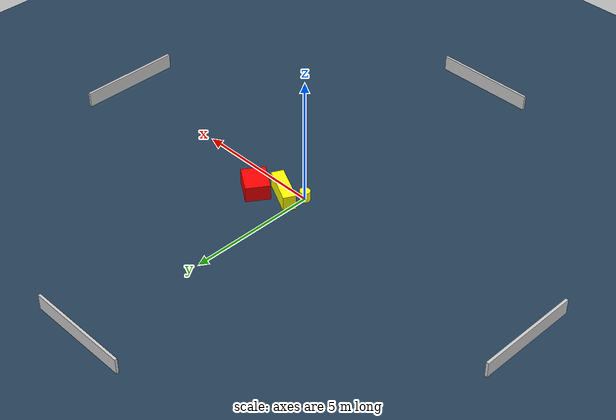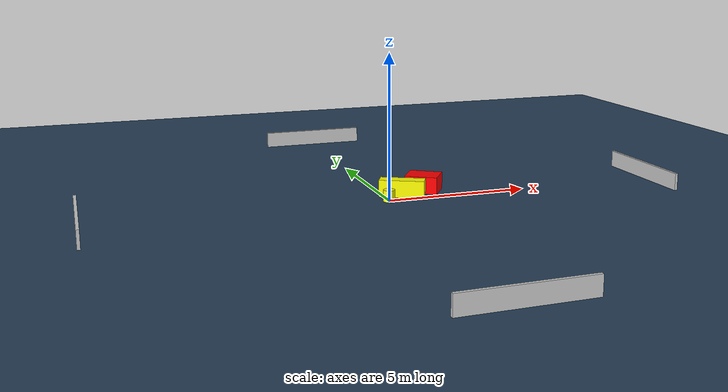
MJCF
<?xml version="1.0" ?>
<mujoco model="generated_environment">
  <option timestep="0.01" integrator="RK4" cone="elliptic"/>
  <default>
    <geom density="1"/>
  </default>
  <asset>
    <texture builtin="gradient" height="3072" name="skybox" rgb1="0.3 0.5 0.7" rgb2="0 0 0" type="skybox" width="512"/>
    <texture builtin="checker" height="300" name="groundplane" rgb1="0.2 0.3 0.4" rgb2="0.1 0.2 0.3" type="2d" width="300"/>
    <material name="groundplane" reflectance="0.2" texrepeat="5 5" texture="groundplane"/>
  </asset>
  <worldbody>
    <light dir="0 0 -1" directional="true" pos="0 0 1.5"/>
    <geom condim="3" friction="0.5 0.005 0.001" material="groundplane" name="floor" pos="0 0 0" size="0 0 0.05" type="plane"/>
    <body name="walls">
      <geom name="wall_1" condim="4" pos="-10.0 0.0 0.3" rgba="0.800000011920929 0.800000011920929 0.800000011920929 1.0" size="0.05 2.0 0.3" type="box"/>
      <geom name="wall_2" condim="4" pos="10.0 0.0 0.3" rgba="0.800000011920929 0.800000011920929 0.800000011920929 1.0" size="0.05 2.0 0.3" type="box"/>
      <geom name="wall_3" condim="4" pos="0.0 -10.0 0.3" rgba="0.800000011920929 0.800000011920929 0.800000011920929 1.0" size="2.0 0.05 0.3" type="box"/>
      <geom name="wall_4" condim="4" pos="0.0 10.0 0.3" rgba="0.800000011920929 0.800000011920929 0.800000011920929 1.0" size="2.0 0.05 0.3" type="box"/>
    </body>
    <body name="robot">
      <joint name="joint_x" type="slide" pos="0 0 0" axis="1 0 0"/>
      <joint name="joint_y" type="slide" pos="0 0 0" axis="0 1 0"/>
      <geom name="robot" type="cylinder" pos="0.0 0.0 0.2" size="0.2 0.2 0.0" mass="5.0" friction="1.0 0.005 0.0001" condim="4" rgba="1.0 1.0 0.0 1.0"/>
    </body>
    <body name="obstacle_1_movable">
      <geom name="obstacle_1_movable" condim="4" pos="0.6376778997769222 0.45441707160402084 0.3" euler="0 0 153.02238669628187" friction="0.0 0.005 0.001" rgba="1.0 1.0 0.0 1.0" size="0.7757765557846608 0.2413356088190871 0.3" type="box" mass="0.1"/>
      <joint type="free"/>
    </body>
    <body name="obstacle_2_static">
      <geom name="obstacle_2_static" condim="4" pos="1.6003477392262104 0.9218150027853909 0.3" euler="0 0 146.0548003469703" friction="0.0 0.005 0.001" rgba="1.0 0.0 0.0 1.0" size="0.570751295641393 0.46358443027611357 0.3" type="box"/>
    </body>
  </worldbody>
  <actuator>
    <motor name="actuator_x" joint="joint_x" gear="1" ctrlrange="-1 1"/>
    <motor name="actuator_y" joint="joint_y" gear="1" ctrlrange="-1 1"/>
  </actuator>
</mujoco>
